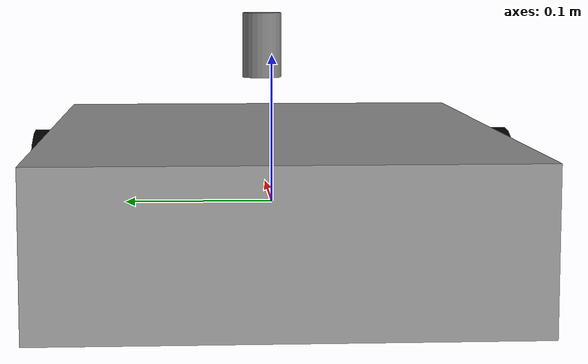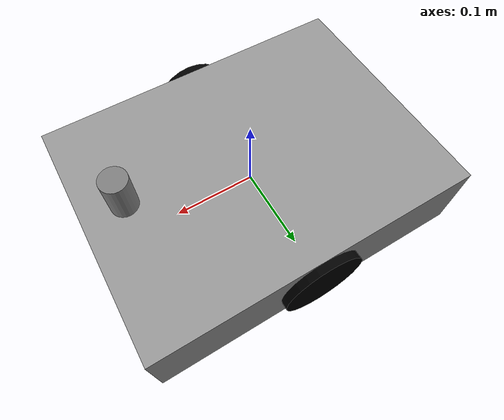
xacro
<?xml version="1.0"?>
<robot xmlns:xacro="http://ros.org/wiki/xacro" name="my_bot">

  <!-- Base Link -->
  <link name="base_link">
    <visual>
      <geometry>
        <box size="0.4 0.3 0.1"/>
      </geometry>
      <material name="gray">
        <color rgba="0.6 0.6 0.6 1.0"/>
      </material>
    </visual>
    <collision>
      <geometry>
        <box size="0.4 0.3 0.1"/>
      </geometry>
    </collision>
    <inertial>
      <mass value="1.0"/>
      <inertia ixx="0.01" ixy="0.0" ixz="0.0"
               iyy="0.01" iyz="0.0"
               izz="0.02"/>
    </inertial>
  </link>

<!-- 초음파 센서가 달리는 링크 -->
  <link name="ultrasonic_link">
    <visual>
      <origin xyz="0 0 0.05" rpy="0 0 0"/>
      <geometry>
        <cylinder radius="0.015" length="0.05"/>
      </geometry>
      <material name="gray">
        <color rgba="0.5 0.5 0.5 1.0"/>
      </material>
    </visual>
  </link>

  <!-- Left Wheel -->
  <link name="left_wheel">
    <visual>
      <geometry>
        <cylinder radius="0.05" length="0.02"/>
      </geometry>
      <origin xyz="0 0 0" rpy="1.5708 0 0"/>
      <material name="black">
        <color rgba="0 0 0 1.0"/>
      </material>
    </visual>
    <collision>
      <geometry>
        <cylinder radius="0.05" length="0.02"/>
      </geometry>
      <origin xyz="0 0 0" rpy="1.5708 0 0"/>
    </collision>
    <inertial>
      <mass value="0.2"/>
      <inertia ixx="0.001" ixy="0.0" ixz="0.0"
               iyy="0.001" iyz="0.0"
               izz="0.001"/>
    </inertial>
  </link>

  <!-- Right Wheel -->
  <link name="right_wheel">
    <visual>
      <geometry>
        <cylinder radius="0.05" length="0.02"/>
      </geometry>
      <origin xyz="0 0 0" rpy="1.5708 0 0"/>
      <material name="black">
        <color rgba="0 0 0 1.0"/>
      </material>
    </visual>
    <collision>
      <geometry>
        <cylinder radius="0.05" length="0.02"/>
      </geometry>
      <origin xyz="0 0 0" rpy="1.5708 0 0"/>
    </collision>
    <inertial>
      <mass value="0.2"/>
      <inertia ixx="0.001" ixy="0.0" ixz="0.0"
               iyy="0.001" iyz="0.0"
               izz="0.001"/>
    </inertial>
  </link>

  <!-- 초음파 센서 링크를 base_link에 고정 -->
  <joint name="ultrasonic_joint" type="fixed">
    <parent link="base_link"/>
    <child link="ultrasonic_link"/>
    <origin xyz="0.15 0 0.05" rpy="0 0 0"/>
  </joint>

  <!-- Left Wheel Joint -->
  <joint name="left_wheel_joint" type="continuous">
    <parent link="base_link"/>
    <child link="left_wheel"/>
    <origin xyz="0 0.15 0" rpy="0 0 0"/>
    <axis xyz="0 1 0"/>
  </joint>

  <!-- Right Wheel Joint -->
  <joint name="right_wheel_joint" type="continuous">
    <parent link="base_link"/>
    <child link="right_wheel"/>
    <origin xyz="0 -0.15 0" rpy="0 0 0"/>
    <axis xyz="0 1 0"/>
  </joint>

  <!-- Gazebo Plugins -->

  <!-- 1. Gazebo ROS Node 플러그인: ROS2와 연결 -->
  <gazebo reference="base_link">
    <plugin name="gazebo_ros_node" filename="libgazebo_ros_init.so">
      <ros>
        <namespace>/</namespace>
      </ros>
    </plugin>
  </gazebo>

  <!-- 2. Diff Drive 플러그인: 이동 기능 -->
  <gazebo>
    <plugin name="diff_drive_controller" filename="libgazebo_ros_diff_drive.so">
      <ros>
        <namespace>/</namespace>
      </ros>
      <update_rate>50.0</update_rate>
      <left_joint>left_wheel_joint</left_joint>
      <right_joint>right_wheel_joint</right_joint>
      <wheel_separation>0.3</wheel_separation>
      <wheel_diameter>0.1</wheel_diameter>
      <command_topic>cmd_vel</command_topic>
      <odometry_topic>odom</odometry_topic>
      <odometry_frame>odom</odometry_frame>
      <robot_base_frame>base_link</robot_base_frame>
      <publish_odom>true</publish_odom>
    </plugin>
  </gazebo>

    <!-- Gazebo 시뮬레이션을 위한 초음파 센서 정의 -->
  <gazebo reference="ultrasonic_link">
    <sensor type="ray" name="ultrasonic_sensor">
      <update_rate>30</update_rate>
      <pose>0 0 0 0 0 0</pose>

      <ray>
        <scan>
          <horizontal>
            <samples>1</samples>
            <resolution>1</resolution>
            <min_angle>0.0</min_angle>
            <max_angle>0.0</max_angle>
          </horizontal>
        </scan>
        <range>
          <min>0.02</min>
          <max>2.0</max>
          <resolution>0.01</resolution>
        </range>
      </ray>
      <plugin name="ultrasonic_plugin" filename="libgazebo_ros_ray_sensor.so">
        <ros>
          <namespace>/</namespace>
          <remapping>~/out:=ultrasonic</remapping>
        </ros>
        <output_type>sensor_msgs/LaserScan</output_type>
        <frame_name>ultrasonic_link</frame_name>
      </plugin>
    </sensor>
  </gazebo>

</robot>
